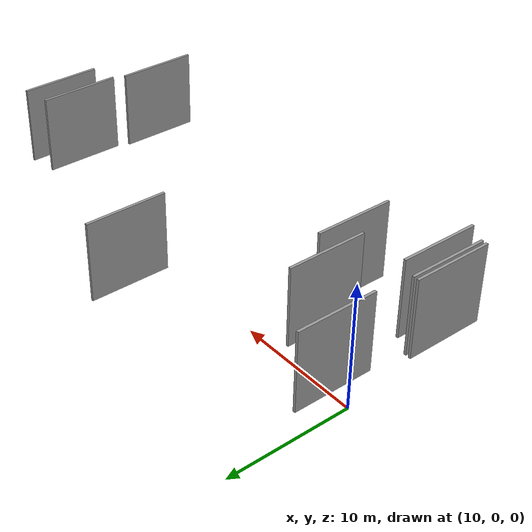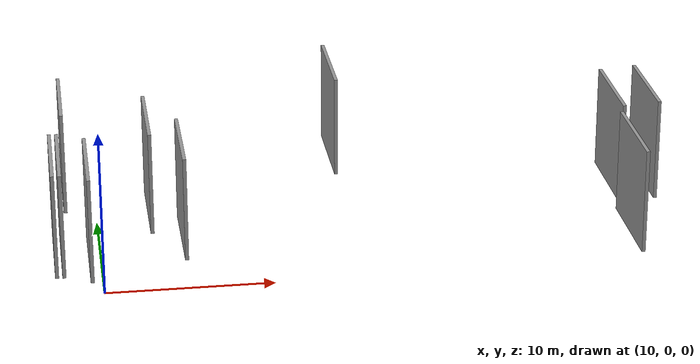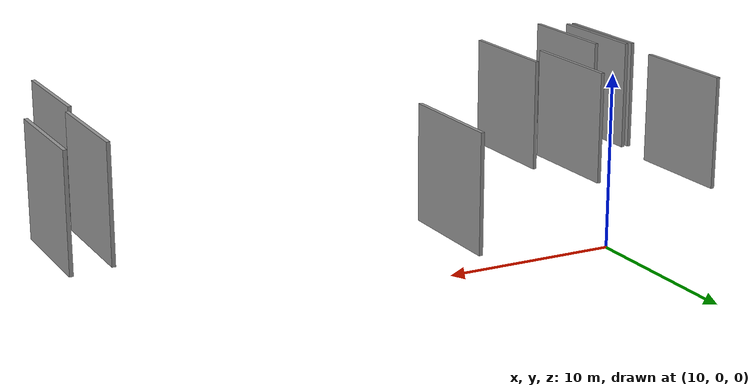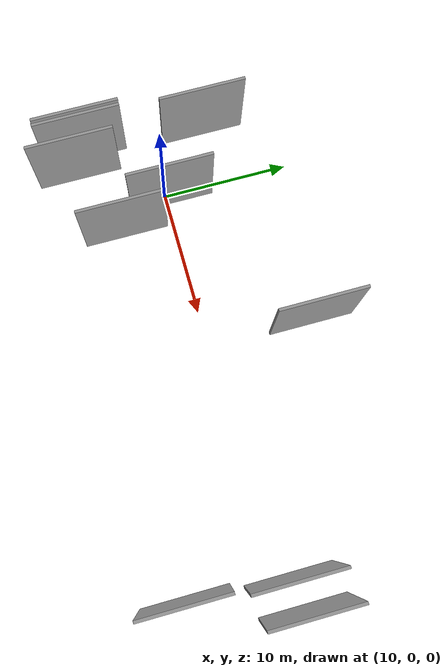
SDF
<sdf version="1.6">
 <world name="default">
  <scene>
   <sky><clouds><speed>12</speed></clouds></sky>
   <ambient>0.4 0.4 0.4 1</ambient>
   <background>0.7 0.7 0.7 1</background>
   <shadows>1</shadows>
  </scene>
  <gravity>0 0 -9.8066</gravity>
  <magnetic_field>6e-06 2.3e-05 -4.2e-05</magnetic_field>
  <physics default="0" name="default_physics" type="ode">
   <ode>
    <solver>
     <type>quick</type>
     <iters>10</iters>
     <sor>1.0</sor>
     <use_dynamic_moi_rescaling>0</use_dynamic_moi_rescaling>
    </solver>
    <constraints>
     <cfm>0</cfm>
     <erp>0.2</erp>
     <contact_max_correcting_vel>100</contact_max_correcting_vel>
     <contact_surface_layer>0.001</contact_surface_layer>
    </constraints>
   </ode>
   <max_step_size>0.004</max_step_size>
   <real_time_factor>1</real_time_factor>
   <real_time_update_rate>250</real_time_update_rate>
  </physics>
  <light name="sun" type="directional">
   <pose>0 0 10 0 0 0</pose>
   <diffuse>0.8 0.8 0.8 1</diffuse>
   <specular>0.2 0.2 0.2 1</specular>
   <attenuation>
    <range>1000</range>
    <constant>0.9</constant>
    <linear>0.01</linear>
    <quadratic>0.001</quadratic>
   </attenuation>
   <direction>-0.5 0.1 -0.9</direction>
  </light>
  <model name="grey_wall_1">
   <static>1</static>
   <pose>12.7396 -0.0037 5.0 0.000000 0.000000 1.570796</pose>
   <link name="link">
    <pose>0 0 3.00 0 0 0</pose>
    <collision name="collision"><geometry><box><size>6.00 0.2 6.00</size></box></geometry></collision>
    <visual name="visual">
     <cast_shadows>0</cast_shadows>
     <geometry><box><size>6.00 0.2 6.00</size></box></geometry>
     <material>
      <script>
       <uri>model://grey_wall/materials/scripts</uri>
       <uri>model://grey_wall/materials/textures</uri>
       <name>vrc/grey_wall</name>
      </script>
     </material>
    </visual>
   </link>
  </model>
  <model name="grey_wall_2">
   <static>1</static>
   <pose>9.1182 -5.9483 5.0 0.000000 0.000000 1.570796</pose>
   <link name="link">
    <pose>0 0 3.00 0 0 0</pose>
    <collision name="collision"><geometry><box><size>6.00 0.2 6.00</size></box></geometry></collision>
    <visual name="visual">
     <cast_shadows>0</cast_shadows>
     <geometry><box><size>6.00 0.2 6.00</size></box></geometry>
     <material>
      <script>
       <uri>model://grey_wall/materials/scripts</uri>
       <uri>model://grey_wall/materials/textures</uri>
       <name>vrc/grey_wall</name>
      </script>
     </material>
    </visual>
   </link>
  </model>
  <model name="grey_wall_3">
   <static>1</static>
   <pose>42.0505 0.9049 5.0 0.000000 0.000000 1.570796</pose>
   <link name="link">
    <pose>0 0 3.00 0 0 0</pose>
    <collision name="collision"><geometry><box><size>6.00 0.2 6.00</size></box></geometry></collision>
    <visual name="visual">
     <cast_shadows>0</cast_shadows>
     <geometry><box><size>6.00 0.2 6.00</size></box></geometry>
     <material>
      <script>
       <uri>model://grey_wall/materials/scripts</uri>
       <uri>model://grey_wall/materials/textures</uri>
       <name>vrc/grey_wall</name>
      </script>
     </material>
    </visual>
   </link>
  </model>
  <model name="grey_wall_4">
   <static>1</static>
   <pose>39.9155 0.5581 5.0 0.000000 0.000000 1.570796</pose>
   <link name="link">
    <pose>0 0 3.00 0 0 0</pose>
    <collision name="collision"><geometry><box><size>6.00 0.2 6.00</size></box></geometry></collision>
    <visual name="visual">
     <cast_shadows>0</cast_shadows>
     <geometry><box><size>6.00 0.2 6.00</size></box></geometry>
     <material>
      <script>
       <uri>model://grey_wall/materials/scripts</uri>
       <uri>model://grey_wall/materials/textures</uri>
       <name>vrc/grey_wall</name>
      </script>
     </material>
    </visual>
   </link>
  </model>
  <model name="grey_wall_5">
   <static>1</static>
   <pose>39.5310 -6.2783 5.0 0.000000 0.000000 1.570796</pose>
   <link name="link">
    <pose>0 0 3.00 0 0 0</pose>
    <collision name="collision"><geometry><box><size>6.00 0.2 6.00</size></box></geometry></collision>
    <visual name="visual">
     <cast_shadows>0</cast_shadows>
     <geometry><box><size>6.00 0.2 6.00</size></box></geometry>
     <material>
      <script>
       <uri>model://grey_wall/materials/scripts</uri>
       <uri>model://grey_wall/materials/textures</uri>
       <name>vrc/grey_wall</name>
      </script>
     </material>
    </visual>
   </link>
  </model>
  <model name="grey_wall_6">
   <static>1</static>
   <pose>7.9803 3.5320 5.0 0.000000 0.000000 1.570796</pose>
   <link name="link">
    <pose>0 0 3.00 0 0 0</pose>
    <collision name="collision"><geometry><box><size>6.00 0.2 6.00</size></box></geometry></collision>
    <visual name="visual">
     <cast_shadows>0</cast_shadows>
     <geometry><box><size>6.00 0.2 6.00</size></box></geometry>
     <material>
      <script>
       <uri>model://grey_wall/materials/scripts</uri>
       <uri>model://grey_wall/materials/textures</uri>
       <name>vrc/grey_wall</name>
      </script>
     </material>
    </visual>
   </link>
  </model>
  <model name="grey_wall_7">
   <static>1</static>
   <pose>7.6253 -5.1470 5.0 0.000000 0.000000 1.570796</pose>
   <link name="link">
    <pose>0 0 3.00 0 0 0</pose>
    <collision name="collision"><geometry><box><size>6.00 0.2 6.00</size></box></geometry></collision>
    <visual name="visual">
     <cast_shadows>0</cast_shadows>
     <geometry><box><size>6.00 0.2 6.00</size></box></geometry>
     <material>
      <script>
       <uri>model://grey_wall/materials/scripts</uri>
       <uri>model://grey_wall/materials/textures</uri>
       <name>vrc/grey_wall</name>
      </script>
     </material>
    </visual>
   </link>
  </model>
  <model name="grey_wall_8">
   <static>1</static>
   <pose>7.2318 -5.1290 5.0 0.000000 0.000000 1.570796</pose>
   <link name="link">
    <pose>0 0 3.00 0 0 0</pose>
    <collision name="collision"><geometry><box><size>6.00 0.2 6.00</size></box></geometry></collision>
    <visual name="visual">
     <cast_shadows>0</cast_shadows>
     <geometry><box><size>6.00 0.2 6.00</size></box></geometry>
     <material>
      <script>
       <uri>model://grey_wall/materials/scripts</uri>
       <uri>model://grey_wall/materials/textures</uri>
       <name>vrc/grey_wall</name>
      </script>
     </material>
    </visual>
   </link>
  </model>
  <model name="grey_wall_9">
   <static>1</static>
   <pose>14.3878 -3.7810 5.0 0.000000 0.000000 1.570796</pose>
   <link name="link">
    <pose>0 0 3.00 0 0 0</pose>
    <collision name="collision"><geometry><box><size>6.00 0.2 6.00</size></box></geometry></collision>
    <visual name="visual">
     <cast_shadows>0</cast_shadows>
     <geometry><box><size>6.00 0.2 6.00</size></box></geometry>
     <material>
      <script>
       <uri>model://grey_wall/materials/scripts</uri>
       <uri>model://grey_wall/materials/textures</uri>
       <name>vrc/grey_wall</name>
      </script>
     </material>
    </visual>
   </link>
  </model>
  <model name="grey_wall_10">
   <static>1</static>
   <pose>24.1309 7.0045 5.0 0.000000 0.000000 1.570796</pose>
   <link name="link">
    <pose>0 0 3.00 0 0 0</pose>
    <collision name="collision"><geometry><box><size>6.00 0.2 6.00</size></box></geometry></collision>
    <visual name="visual">
     <cast_shadows>0</cast_shadows>
     <geometry><box><size>6.00 0.2 6.00</size></box></geometry>
     <material>
      <script>
       <uri>model://grey_wall/materials/scripts</uri>
       <uri>model://grey_wall/materials/textures</uri>
       <name>vrc/grey_wall</name>
      </script>
     </material>
    </visual>
   </link>
  </model>
 </world>
</sdf>
